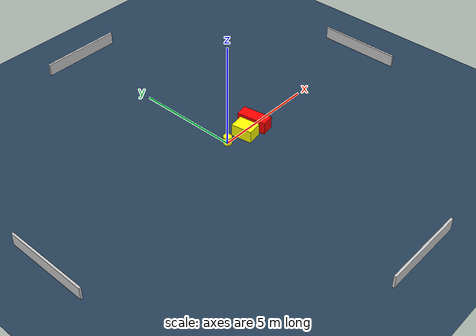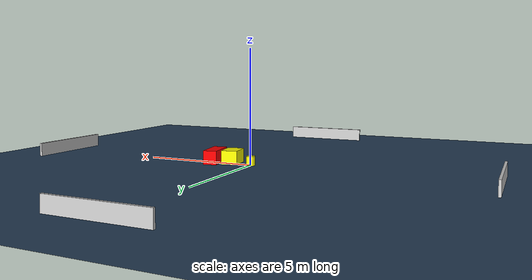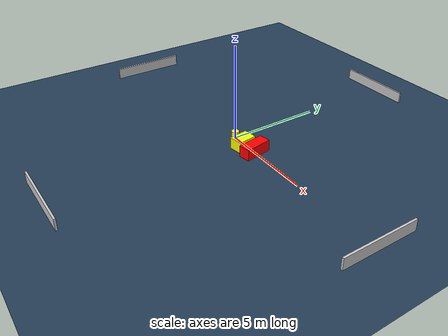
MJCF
<?xml version="1.0" ?>
<mujoco model="generated_environment">
  <option timestep="0.01" integrator="RK4" cone="elliptic"/>
  <default>
    <geom density="1"/>
  </default>
  <asset>
    <texture builtin="gradient" height="3072" name="skybox" rgb1="0.3 0.5 0.7" rgb2="0 0 0" type="skybox" width="512"/>
    <texture builtin="checker" height="300" name="groundplane" rgb1="0.2 0.3 0.4" rgb2="0.1 0.2 0.3" type="2d" width="300"/>
    <material name="groundplane" reflectance="0.2" texrepeat="5 5" texture="groundplane"/>
  </asset>
  <worldbody>
    <light dir="0 0 -1" directional="true" pos="0 0 1.5"/>
    <geom condim="3" friction="0.5 0.005 0.001" material="groundplane" name="floor" pos="0 0 0" size="0 0 0.05" type="plane"/>
    <body name="walls">
      <geom name="wall_1" condim="4" pos="-10.0 0.0 0.3" rgba="0.800000011920929 0.800000011920929 0.800000011920929 1.0" size="0.05 2.0 0.3" type="box"/>
      <geom name="wall_2" condim="4" pos="10.0 0.0 0.3" rgba="0.800000011920929 0.800000011920929 0.800000011920929 1.0" size="0.05 2.0 0.3" type="box"/>
      <geom name="wall_3" condim="4" pos="0.0 -10.0 0.3" rgba="0.800000011920929 0.800000011920929 0.800000011920929 1.0" size="2.0 0.05 0.3" type="box"/>
      <geom name="wall_4" condim="4" pos="0.0 10.0 0.3" rgba="0.800000011920929 0.800000011920929 0.800000011920929 1.0" size="2.0 0.05 0.3" type="box"/>
    </body>
    <body name="robot">
      <joint name="joint_x" type="slide" pos="0 0 0" axis="1 0 0"/>
      <joint name="joint_y" type="slide" pos="0 0 0" axis="0 1 0"/>
      <geom name="robot" type="cylinder" pos="0.0 0.0 0.2" size="0.2 0.2 0.0" mass="5.0" friction="1.0 0.005 0.0001" condim="4" rgba="1.0 1.0 0.0 1.0"/>
    </body>
    <body name="obstacle_1_movable">
      <geom name="obstacle_1_movable" condim="4" pos="0.9737171333520326 -0.19870974373577133 0.3" euler="0 0 98.80865293645813" friction="0.0 0.005 0.001" rgba="1.0 1.0 0.0 1.0" size="0.5011502689755567 0.35436738011724 0.3" type="box" mass="0.1"/>
      <joint type="free"/>
    </body>
    <body name="obstacle_2_static">
      <geom name="obstacle_2_static" condim="4" pos="1.7594005420653882 -0.04473388258607895 0.3" euler="0 0 9.2387256707726" friction="0.0 0.005 0.001" rgba="1.0 0.0 0.0 1.0" size="0.2994495010539398 0.7115619741400707 0.3" type="box"/>
    </body>
  </worldbody>
  <actuator>
    <motor name="actuator_x" joint="joint_x" gear="1" ctrlrange="-1 1"/>
    <motor name="actuator_y" joint="joint_y" gear="1" ctrlrange="-1 1"/>
  </actuator>
</mujoco>
